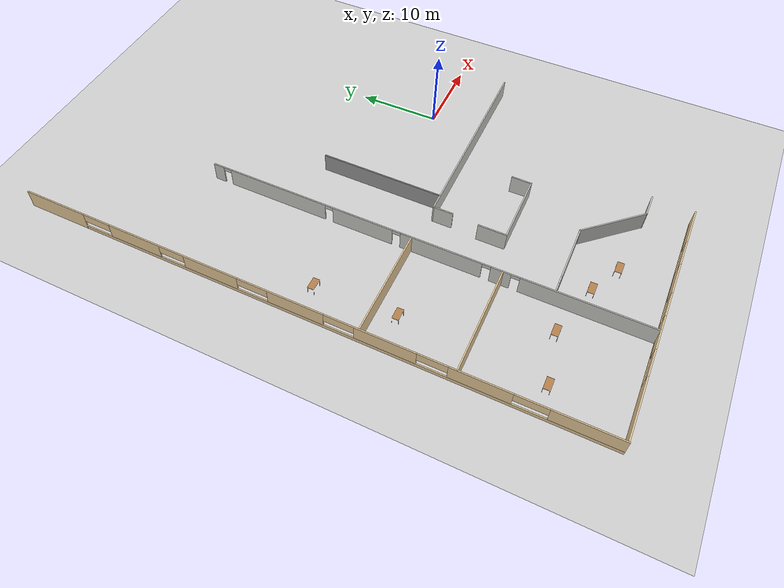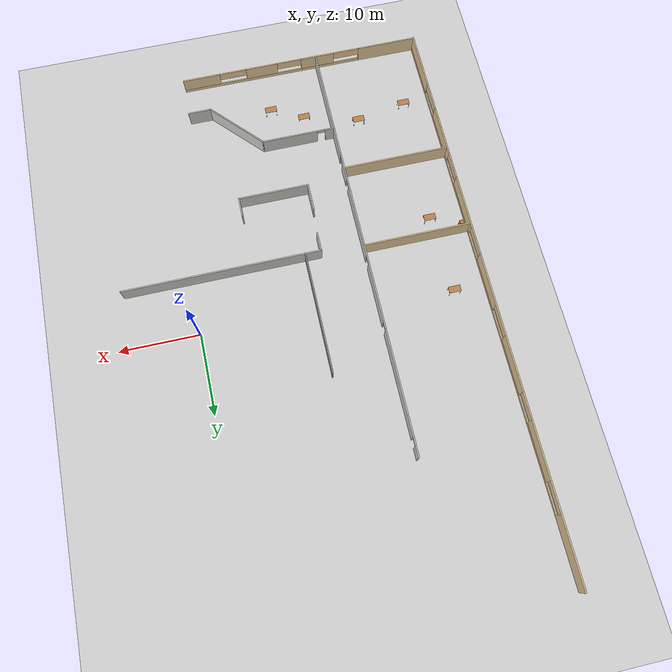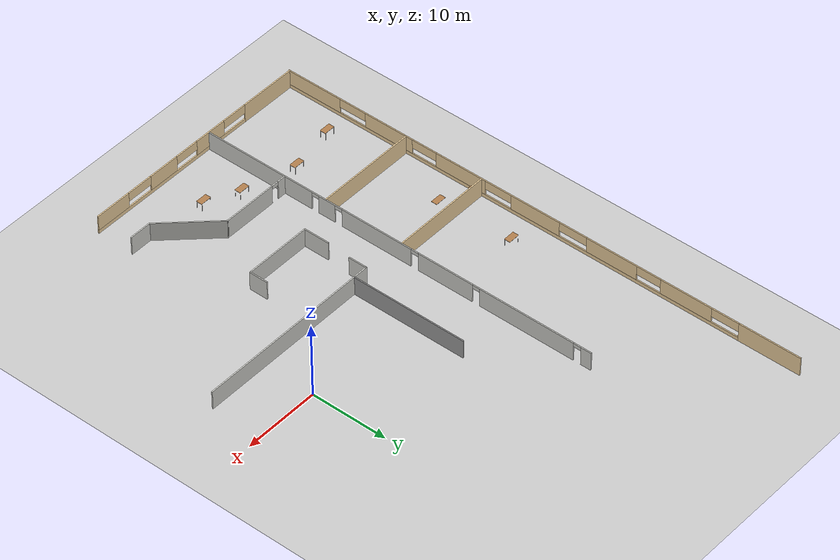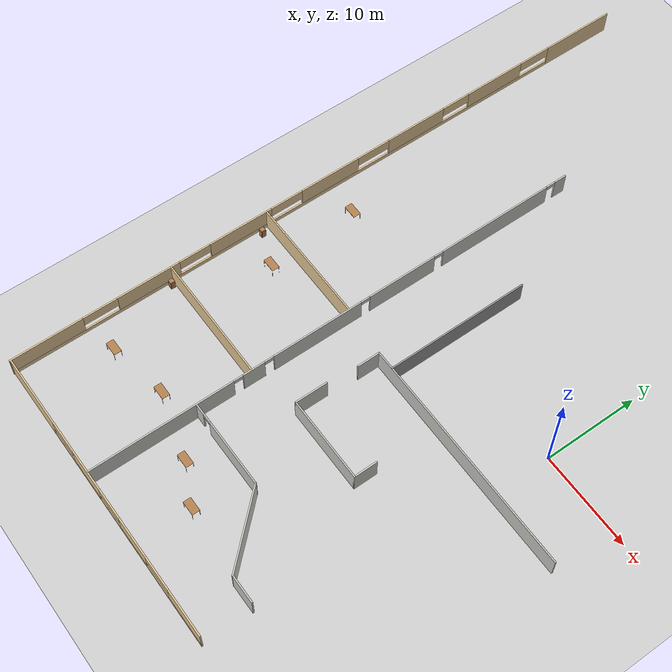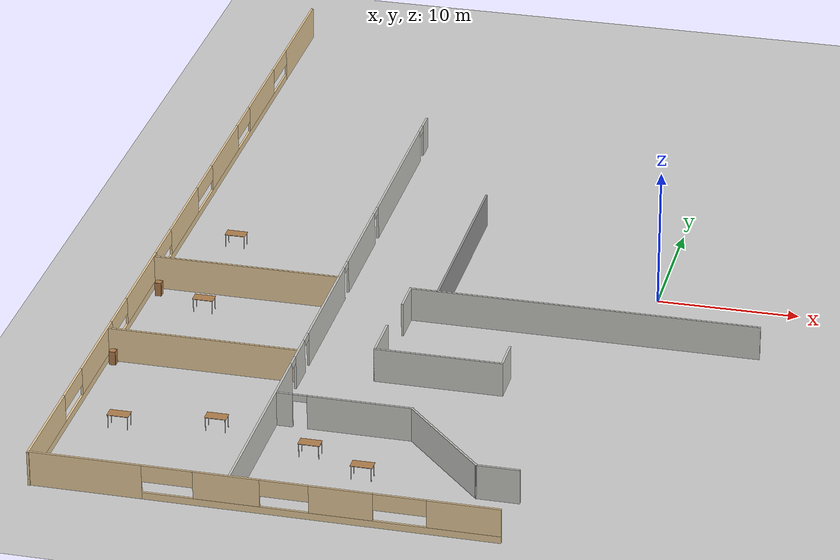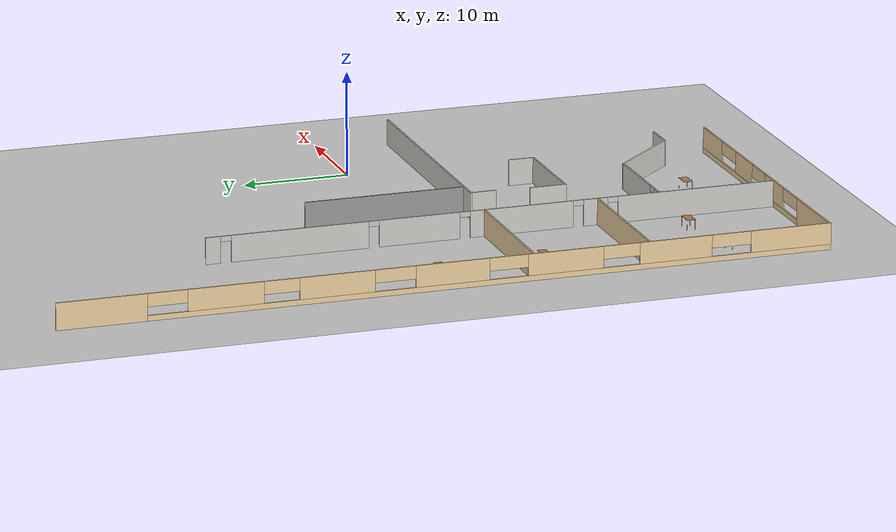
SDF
<sdf version="1.6">
 <world name="default">
  <model name="ground_plane">
   <static>1</static>
   <link name="link">
    <collision name="collision">
     <geometry><plane><normal>0 0 1</normal><size>100 100</size></plane></geometry>
     <surface><friction><ode><mu>100</mu><mu2>50</mu2></ode></friction></surface>
    </collision>
    <visual name="visual">
     <cast_shadows>0</cast_shadows>
     <geometry><plane><normal>0 0 1</normal><size>100 100</size></plane></geometry>
     <material>
      <script><uri>file://media/materials/scripts/gazebo.material</uri><name>Gazebo/Grey</name></script>
     </material>
    </visual>
   </link>
  </model>
  <model name="Building">
   <pose>0.1606 -0.442 0 0 -0 0</pose>
   <link name="Wall_10">
    <pose>-19.5795 -33.75 0 0 -0 0</pose>
    <visual name="Wall_10_Visual_0">
     <pose>-11.9192 0 1.25 0 -0 0</pose>
     <geometry><box><size>7.66158 0.15 2.5</size></box></geometry>
     <material>
      <script><uri>file://media/materials/scripts/gazebo.material</uri><name>Gazebo/Grey</name></script>
      <ambient>0.921569 0.807843 0.615686 1</ambient>
     </material>
     <meta><layer>0</layer></meta>
    </visual>
    <collision name="Wall_10_Collision_0">
     <geometry><box><size>7.66158 0.15 2.5</size></box></geometry>
     <pose>-11.9192 0 1.25 0 -0 0</pose>
    </collision>
    <visual name="Wall_10_Visual_1">
     <pose>3.83079 0 0.25 0 -0 0</pose>
     <geometry><box><size>23.8384 0.15 0.5</size></box></geometry>
     <material>
      <script><uri>file://media/materials/scripts/gazebo.material</uri><name>Gazebo/Grey</name></script>
      <ambient>0.921569 0.807843 0.615686 1</ambient>
     </material>
     <meta><layer>0</layer></meta>
    </visual>
    <collision name="Wall_10_Collision_1">
     <geometry><box><size>23.8384 0.15 0.5</size></box></geometry>
     <pose>3.83079 0 0.25 0 -0 0</pose>
    </collision>
    <visual name="Wall_10_Visual_2">
     <pose>-2.41376 0 1.5 0 -0 0</pose>
     <geometry><box><size>4.46303 0.15 2</size></box></geometry>
     <material>
      <script><uri>file://media/materials/scripts/gazebo.material</uri><name>Gazebo/Grey</name></script>
      <ambient>0.921569 0.807843 0.615686 1</ambient>
     </material>
     <meta><layer>0</layer></meta>
    </visual>
    <collision name="Wall_10_Collision_2">
     <geometry><box><size>4.46303 0.15 2</size></box></geometry>
     <pose>-2.41376 0 1.5 0 -0 0</pose>
    </collision>
    <visual name="Wall_10_Visual_3">
     <pose>5.19728 0 1.5 0 -0 0</pose>
     <geometry><box><size>4.24144 0.15 2</size></box></geometry>
     <material>
      <script><uri>file://media/materials/scripts/gazebo.material</uri><name>Gazebo/Grey</name></script>
      <ambient>0.921569 0.807843 0.615686 1</ambient>
     </material>
     <meta><layer>0</layer></meta>
    </visual>
    <collision name="Wall_10_Collision_3">
     <geometry><box><size>4.24144 0.15 2</size></box></geometry>
     <pose>5.19728 0 1.5 0 -0 0</pose>
    </collision>
    <visual name="Wall_10_Visual_4">
     <pose>13.3049 0 1.5 0 -0 0</pose>
     <geometry><box><size>4.89016 0.15 2</size></box></geometry>
     <material>
      <script><uri>file://media/materials/scripts/gazebo.material</uri><name>Gazebo/Grey</name></script>
      <ambient>0.921569 0.807843 0.615686 1</ambient>
     </material>
     <meta><layer>0</layer></meta>
    </visual>
    <collision name="Wall_10_Collision_4">
     <geometry><box><size>4.89016 0.15 2</size></box></geometry>
     <pose>13.3049 0 1.5 0 -0 0</pose>
    </collision>
    <visual name="Wall_10_Visual_5">
     <pose>-6.36685 0 1.9 0 -0 0</pose>
     <geometry><box><size>3.44314 0.15 1.2</size></box></geometry>
     <material>
      <script><uri>file://media/materials/scripts/gazebo.material</uri><name>Gazebo/Grey</name></script>
      <ambient>0.921569 0.807843 0.615686 1</ambient>
     </material>
     <meta><layer>0</layer></meta>
    </visual>
    <collision name="Wall_10_Collision_5">
     <geometry><box><size>3.44314 0.15 1.2</size></box></geometry>
     <pose>-6.36685 0 1.9 0 -0 0</pose>
    </collision>
    <visual name="Wall_10_Visual_6">
     <pose>1.44716 0 1.9 0 -0 0</pose>
     <geometry><box><size>3.25881 0.15 1.2</size></box></geometry>
     <material>
      <script><uri>file://media/materials/scripts/gazebo.material</uri><name>Gazebo/Grey</name></script>
      <ambient>0.921569 0.807843 0.615686 1</ambient>
     </material>
     <meta><layer>0</layer></meta>
    </visual>
    <collision name="Wall_10_Collision_6">
     <geometry><box><size>3.25881 0.15 1.2</size></box></geometry>
     <pose>1.44716 0 1.9 0 -0 0</pose>
    </collision>
    <visual name="Wall_10_Visual_7">
     <pose>9.08892 0 1.9 0 -0 0</pose>
     <geometry><box><size>3.54184 0.15 1.2</size></box></geometry>
     <material>
      <script><uri>file://media/materials/scripts/gazebo.material</uri><name>Gazebo/Grey</name></script>
      <ambient>0.921569 0.807843 0.615686 1</ambient>
     </material>
     <meta><layer>0</layer></meta>
    </visual>
    <collision name="Wall_10_Collision_7">
     <geometry><box><size>3.54184 0.15 1.2</size></box></geometry>
     <pose>9.08892 0 1.9 0 -0 0</pose>
    </collision>
   </link>
   <link name="Wall_2">
    <pose>-35.329 1.98049 0 0 0 -1.5708</pose>
    <visual name="Wall_2_Visual_0">
     <pose>-31.7867 0 1.25 0 -0 0</pose>
     <geometry><box><size>8.1767 0.15 2.5</size></box></geometry>
     <material>
      <script><uri>file://media/materials/scripts/gazebo.material</uri><name>Gazebo/Grey</name></script>
      <ambient>0.921569 0.807843 0.615686 1</ambient>
     </material>
     <meta><layer>0</layer></meta>
    </visual>
    <collision name="Wall_2_Collision_0">
     <geometry><box><size>8.1767 0.15 2.5</size></box></geometry>
     <pose>-31.7867 0 1.25 0 -0 0</pose>
    </collision>
    <visual name="Wall_2_Visual_1">
     <pose>4.08835 0 0.25 0 -0 0</pose>
     <geometry><box><size>63.5733 0.15 0.5</size></box></geometry>
     <material>
      <script><uri>file://media/materials/scripts/gazebo.material</uri><name>Gazebo/Grey</name></script>
      <ambient>0.921569 0.807843 0.615686 1</ambient>
     </material>
     <meta><layer>0</layer></meta>
    </visual>
    <collision name="Wall_2_Collision_1">
     <geometry><box><size>63.5733 0.15 0.5</size></box></geometry>
     <pose>4.08835 0 0.25 0 -0 0</pose>
    </collision>
    <visual name="Wall_2_Visual_2">
     <pose>-20.6272 0 1.5 0 -0 0</pose>
     <geometry><box><size>6.88516 0.15 2</size></box></geometry>
     <material>
      <script><uri>file://media/materials/scripts/gazebo.material</uri><name>Gazebo/Grey</name></script>
      <ambient>0.921569 0.807843 0.615686 1</ambient>
     </material>
     <meta><layer>0</layer></meta>
    </visual>
    <collision name="Wall_2_Collision_2">
     <geometry><box><size>6.88516 0.15 2</size></box></geometry>
     <pose>-20.6272 0 1.5 0 -0 0</pose>
    </collision>
    <visual name="Wall_2_Visual_3">
     <pose>-10.487 0 1.5 0 -0 0</pose>
     <geometry><box><size>6.88516 0.15 2</size></box></geometry>
     <material>
      <script><uri>file://media/materials/scripts/gazebo.material</uri><name>Gazebo/Grey</name></script>
      <ambient>0.921569 0.807843 0.615686 1</ambient>
     </material>
     <meta><layer>0</layer></meta>
    </visual>
    <collision name="Wall_2_Collision_3">
     <geometry><box><size>6.88516 0.15 2</size></box></geometry>
     <pose>-10.487 0 1.5 0 -0 0</pose>
    </collision>
    <visual name="Wall_2_Visual_4">
     <pose>0.140779 0 1.5 0 -0 0</pose>
     <geometry><box><size>6.7931 0.15 2</size></box></geometry>
     <material>
      <script><uri>file://media/materials/scripts/gazebo.material</uri><name>Gazebo/Grey</name></script>
      <ambient>0.921569 0.807843 0.615686 1</ambient>
     </material>
     <meta><layer>0</layer></meta>
    </visual>
    <collision name="Wall_2_Collision_4">
     <geometry><box><size>6.7931 0.15 2</size></box></geometry>
     <pose>0.140779 0 1.5 0 -0 0</pose>
    </collision>
    <visual name="Wall_2_Visual_5">
     <pose>10.6748 0 1.5 0 -0 0</pose>
     <geometry><box><size>7.0604 0.15 2</size></box></geometry>
     <material>
      <script><uri>file://media/materials/scripts/gazebo.material</uri><name>Gazebo/Grey</name></script>
      <ambient>0.921569 0.807843 0.615686 1</ambient>
     </material>
     <meta><layer>0</layer></meta>
    </visual>
    <collision name="Wall_2_Collision_5">
     <geometry><box><size>7.0604 0.15 2</size></box></geometry>
     <pose>10.6748 0 1.5 0 -0 0</pose>
    </collision>
    <visual name="Wall_2_Visual_6">
     <pose>21.0585 0 1.5 0 -0 0</pose>
     <geometry><box><size>6.84339 0.15 2</size></box></geometry>
     <material>
      <script><uri>file://media/materials/scripts/gazebo.material</uri><name>Gazebo/Grey</name></script>
      <ambient>0.921569 0.807843 0.615686 1</ambient>
     </material>
     <meta><layer>0</layer></meta>
    </visual>
    <collision name="Wall_2_Collision_6">
     <geometry><box><size>6.84339 0.15 2</size></box></geometry>
     <pose>21.0585 0 1.5 0 -0 0</pose>
    </collision>
    <visual name="Wall_2_Visual_7">
     <pose>32.0339 0 1.5 0 -0 0</pose>
     <geometry><box><size>7.68221 0.15 2</size></box></geometry>
     <material>
      <script><uri>file://media/materials/scripts/gazebo.material</uri><name>Gazebo/Grey</name></script>
      <ambient>0.921569 0.807843 0.615686 1</ambient>
     </material>
     <meta><layer>0</layer></meta>
    </visual>
    <collision name="Wall_2_Collision_7">
     <geometry><box><size>7.68221 0.15 2</size></box></geometry>
     <pose>32.0339 0 1.5 0 -0 0</pose>
    </collision>
    <visual name="Wall_2_Visual_8">
     <pose>-25.884 0 1.9 0 -0 0</pose>
     <geometry><box><size>3.62857 0.15 1.2</size></box></geometry>
     <material>
      <script><uri>file://media/materials/scripts/gazebo.material</uri><name>Gazebo/Grey</name></script>
      <ambient>0.921569 0.807843 0.615686 1</ambient>
     </material>
     <meta><layer>0</layer></meta>
    </visual>
    <collision name="Wall_2_Collision_8">
     <geometry><box><size>3.62857 0.15 1.2</size></box></geometry>
     <pose>-25.884 0 1.9 0 -0 0</pose>
    </collision>
    <visual name="Wall_2_Visual_9">
     <pose>-15.5571 0 1.9 0 -0 0</pose>
     <geometry><box><size>3.25498 0.15 1.2</size></box></geometry>
     <material>
      <script><uri>file://media/materials/scripts/gazebo.material</uri><name>Gazebo/Grey</name></script>
      <ambient>0.921569 0.807843 0.615686 1</ambient>
     </material>
     <meta><layer>0</layer></meta>
    </visual>
    <collision name="Wall_2_Collision_9">
     <geometry><box><size>3.25498 0.15 1.2</size></box></geometry>
     <pose>-15.5571 0 1.9 0 -0 0</pose>
    </collision>
    <visual name="Wall_2_Visual_10">
     <pose>-5.15011 0 1.9 0 -0 0</pose>
     <geometry><box><size>3.78867 0.15 1.2</size></box></geometry>
     <material>
      <script><uri>file://media/materials/scripts/gazebo.material</uri><name>Gazebo/Grey</name></script>
      <ambient>0.921569 0.807843 0.615686 1</ambient>
     </material>
     <meta><layer>0</layer></meta>
    </visual>
    <collision name="Wall_2_Collision_10">
     <geometry><box><size>3.78867 0.15 1.2</size></box></geometry>
     <pose>-5.15011 0 1.9 0 -0 0</pose>
    </collision>
    <visual name="Wall_2_Visual_11">
     <pose>5.34097 0 1.9 0 -0 0</pose>
     <geometry><box><size>3.60729 0.15 1.2</size></box></geometry>
     <material>
      <script><uri>file://media/materials/scripts/gazebo.material</uri><name>Gazebo/Grey</name></script>
      <ambient>0.921569 0.807843 0.615686 1</ambient>
     </material>
     <meta><layer>0</layer></meta>
    </visual>
    <collision name="Wall_2_Collision_11">
     <geometry><box><size>3.60729 0.15 1.2</size></box></geometry>
     <pose>5.34097 0 1.9 0 -0 0</pose>
    </collision>
    <visual name="Wall_2_Visual_12">
     <pose>15.9209 0 1.9 0 -0 0</pose>
     <geometry><box><size>3.43183 0.15 1.2</size></box></geometry>
     <material>
      <script><uri>file://media/materials/scripts/gazebo.material</uri><name>Gazebo/Grey</name></script>
      <ambient>0.921569 0.807843 0.615686 1</ambient>
     </material>
     <meta><layer>0</layer></meta>
    </visual>
    <collision name="Wall_2_Collision_12">
     <geometry><box><size>3.43183 0.15 1.2</size></box></geometry>
     <pose>15.9209 0 1.9 0 -0 0</pose>
    </collision>
    <visual name="Wall_2_Visual_13">
     <pose>26.3365 0 1.9 0 -0 0</pose>
     <geometry><box><size>3.71256 0.15 1.2</size></box></geometry>
     <material>
      <script><uri>file://media/materials/scripts/gazebo.material</uri><name>Gazebo/Grey</name></script>
      <ambient>0.921569 0.807843 0.615686 1</ambient>
     </material>
     <meta><layer>0</layer></meta>
    </visual>
    <collision name="Wall_2_Collision_13">
     <geometry><box><size>3.71256 0.15 1.2</size></box></geometry>
     <pose>26.3365 0 1.9 0 -0 0</pose>
    </collision>
   </link>
   <link name="Wall_48">
    <pose>-21.778 -6.62477 0 0 -0 1.5708</pose>
    <visual name="Wall_48_Visual_0">
     <pose>-19.5242 0 1.25 0 -0 0</pose>
     <geometry><box><size>15.2016 0.15 2.5</size></box></geometry>
     <material>
      <script><uri>file://media/materials/scripts/gazebo.material</uri><name>Gazebo/CeilingTiled</name></script>
      <ambient>1 1 1 1</ambient>
     </material>
     <meta><layer>0</layer></meta>
    </visual>
    <collision name="Wall_48_Collision_0">
     <geometry><box><size>15.2016 0.15 2.5</size></box></geometry>
     <pose>-19.5242 0 1.25 0 -0 0</pose>
    </collision>
    <visual name="Wall_48_Visual_1">
     <pose>-9.74757 0 1.25 0 -0 0</pose>
     <geometry><box><size>2.35165 0.15 2.5</size></box></geometry>
     <material>
      <script><uri>file://media/materials/scripts/gazebo.material</uri><name>Gazebo/CeilingTiled</name></script>
      <ambient>1 1 1 1</ambient>
     </material>
     <meta><layer>0</layer></meta>
    </visual>
    <collision name="Wall_48_Collision_1">
     <geometry><box><size>2.35165 0.15 2.5</size></box></geometry>
     <pose>-9.74757 0 1.25 0 -0 0</pose>
    </collision>
    <visual name="Wall_48_Visual_2">
     <pose>-2.65076 0 1.25 0 -0 0</pose>
     <geometry><box><size>9.84197 0.15 2.5</size></box></geometry>
     <material>
      <script><uri>file://media/materials/scripts/gazebo.material</uri><name>Gazebo/CeilingTiled</name></script>
      <ambient>1 1 1 1</ambient>
     </material>
     <meta><layer>0</layer></meta>
    </visual>
    <collision name="Wall_48_Collision_2">
     <geometry><box><size>9.84197 0.15 2.5</size></box></geometry>
     <pose>-2.65076 0 1.25 0 -0 0</pose>
    </collision>
    <visual name="Wall_48_Visual_3">
     <pose>7.07473 0 1.25 0 -0 0</pose>
     <geometry><box><size>7.60901 0.15 2.5</size></box></geometry>
     <material>
      <script><uri>file://media/materials/scripts/gazebo.material</uri><name>Gazebo/CeilingTiled</name></script>
      <ambient>1 1 1 1</ambient>
     </material>
     <meta><layer>0</layer></meta>
    </visual>
    <collision name="Wall_48_Collision_3">
     <geometry><box><size>7.60901 0.15 2.5</size></box></geometry>
     <pose>7.07473 0 1.25 0 -0 0</pose>
    </collision>
    <visual name="Wall_48_Visual_4">
     <pose>18.3068 0 1.25 0 -0 0</pose>
     <geometry><box><size>12.8551 0.15 2.5</size></box></geometry>
     <material>
      <script><uri>file://media/materials/scripts/gazebo.material</uri><name>Gazebo/CeilingTiled</name></script>
      <ambient>1 1 1 1</ambient>
     </material>
     <meta><layer>0</layer></meta>
    </visual>
    <collision name="Wall_48_Collision_4">
     <geometry><box><size>12.8551 0.15 2.5</size></box></geometry>
     <pose>18.3068 0 1.25 0 -0 0</pose>
    </collision>
    <visual name="Wall_48_Visual_5">
     <pose>26.4297 0 1.25 0 -0 0</pose>
     <geometry><box><size>1.39064 0.15 2.5</size></box></geometry>
     <material>
      <script><uri>file://media/materials/scripts/gazebo.material</uri><name>Gazebo/CeilingTiled</name></script>
      <ambient>1 1 1 1</ambient>
     </material>
     <meta><layer>0</layer></meta>
    </visual>
    <collision name="Wall_48_Collision_5">
     <geometry><box><size>1.39064 0.15 2.5</size></box></geometry>
     <pose>26.4297 0 1.25 0 -0 0</pose>
    </collision>
    <visual name="Wall_48_Visual_6">
     <pose>-11.4234 0 2.25 0 -0 0</pose>
     <geometry><box><size>1 0.15 0.5</size></box></geometry>
     <material>
      <script><uri>file://media/materials/scripts/gazebo.material</uri><name>Gazebo/CeilingTiled</name></script>
      <ambient>1 1 1 1</ambient>
     </material>
     <meta><layer>0</layer></meta>
    </visual>
    <collision name="Wall_48_Collision_6">
     <geometry><box><size>1 0.15 0.5</size></box></geometry>
     <pose>-11.4234 0 2.25 0 -0 0</pose>
    </collision>
    <visual name="Wall_48_Visual_7">
     <pose>-8.07175 0 2.25 0 -0 0</pose>
     <geometry><box><size>1 0.15 0.5</size></box></geometry>
     <material>
      <script><uri>file://media/materials/scripts/gazebo.material</uri><name>Gazebo/CeilingTiled</name></script>
      <ambient>1 1 1 1</ambient>
     </material>
     <meta><layer>0</layer></meta>
    </visual>
    <collision name="Wall_48_Collision_7">
     <geometry><box><size>1 0.15 0.5</size></box></geometry>
     <pose>-8.07175 0 2.25 0 -0 0</pose>
    </collision>
    <visual name="Wall_48_Visual_8">
     <pose>2.77022 0 2.25 0 -0 0</pose>
     <geometry><box><size>1 0.15 0.5</size></box></geometry>
     <material>
      <script><uri>file://media/materials/scripts/gazebo.material</uri><name>Gazebo/CeilingTiled</name></script>
      <ambient>1 1 1 1</ambient>
     </material>
     <meta><layer>0</layer></meta>
    </visual>
    <collision name="Wall_48_Collision_8">
     <geometry><box><size>1 0.15 0.5</size></box></geometry>
     <pose>2.77022 0 2.25 0 -0 0</pose>
    </collision>
    <visual name="Wall_48_Visual_9">
     <pose>11.3792 0 2.25 0 -0 0</pose>
     <geometry><box><size>1 0.15 0.5</size></box></geometry>
     <material>
      <script><uri>file://media/materials/scripts/gazebo.material</uri><name>Gazebo/CeilingTiled</name></script>
      <ambient>1 1 1 1</ambient>
     </material>
     <meta><layer>0</layer></meta>
    </visual>
    <collision name="Wall_48_Collision_9">
     <geometry><box><size>1 0.15 0.5</size></box></geometry>
     <pose>11.3792 0 2.25 0 -0 0</pose>
    </collision>
    <visual name="Wall_48_Visual_10">
     <pose>25.2344 0 2.25 0 -0 0</pose>
     <geometry><box><size>1 0.15 0.5</size></box></geometry>
     <material>
      <script><uri>file://media/materials/scripts/gazebo.material</uri><name>Gazebo/CeilingTiled</name></script>
      <ambient>1 1 1 1</ambient>
     </material>
     <meta><layer>0</layer></meta>
    </visual>
    <collision name="Wall_48_Collision_10">
     <geometry><box><size>1 0.15 0.5</size></box></geometry>
     <pose>25.2344 0 2.25 0 -0 0</pose>
    </collision>
   </link>
   <link name="Wall_56">
    <collision name="Wall_56_Collision">
     <geometry><box><size>13.5 0.15 2.5</size></box></geometry>
     <pose>0 0 1.25 0 -0 0</pose>
    </collision>
    <visual name="Wall_56_Visual">
     <pose>0 0 1.25 0 -0 0</pose>
     <geometry><box><size>13.5 0.15 2.5</size></box></geometry>
     <material>
      <script><uri>file://media/materials/scripts/gazebo.material</uri><name>Gazebo/Grey</name></script>
      <ambient>0.921569 0.807843 0.615686 1</ambient>
     </material>
     <meta><layer>0</layer></meta>
    </visual>
    <pose>-28.5496 -5.72467 0 0 -0 0</pose>
   </link>
   <link name="Wall_58">
    <collision name="Wall_58_Collision">
     <geometry><box><size>13.5 0.15 2.5</size></box></geometry>
     <pose>0 0 1.25 0 -0 0</pose>
    </collision>
    <visual name="Wall_58_Visual">
     <pose>0 0 1.25 0 -0 0</pose>
     <geometry><box><size>13.5 0.15 2.5</size></box></geometry>
     <material>
      <script><uri>file://media/materials/scripts/gazebo.material</uri><name>Gazebo/Grey</name></script>
      <ambient>0.921569 0.807843 0.615686 1</ambient>
     </material>
     <meta><layer>0</layer></meta>
    </visual>
    <pose>-28.5707 -16.5913 0 0 -0 0</pose>
   </link>
   <link name="Wall_60">
    <pose>-17.0925 -22.5155 0 0 -0 0</pose>
    <visual name="Wall_60_Visual_0">
     <pose>-4.12823 0 1.25 0 -0 0</pose>
     <geometry><box><size>1.24353 0.15 2.5</size></box></geometry>
     <material>
      <script><uri>file://media/materials/scripts/gazebo.material</uri><name>Gazebo/CeilingTiled</name></script>
      <ambient>1 1 1 1</ambient>
     </material>
     <meta><layer>0</layer></meta>
    </visual>
    <collision name="Wall_60_Collision_0">
     <geometry><box><size>1.24353 0.15 2.5</size></box></geometry>
     <pose>-4.12823 0 1.25 0 -0 0</pose>
    </collision>
    <visual name="Wall_60_Visual_1">
     <pose>1.12177 0 1.25 0 -0 0</pose>
     <geometry><box><size>7.25647 0.15 2.5</size></box></geometry>
     <material>
      <script><uri>file://media/materials/scripts/gazebo.material</uri><name>Gazebo/CeilingTiled</name></script>
      <ambient>1 1 1 1</ambient>
     </material>
     <meta><layer>0</layer></meta>
    </visual>
    <collision name="Wall_60_Collision_1">
     <geometry><box><size>7.25647 0.15 2.5</size></box></geometry>
     <pose>1.12177 0 1.25 0 -0 0</pose>
    </collision>
    <visual name="Wall_60_Visual_2">
     <pose>-3.00647 0 2.25 0 -0 0</pose>
     <geometry><box><size>1 0.15 0.5</size></box></geometry>
     <material>
      <script><uri>file://media/materials/scripts/gazebo.material</uri><name>Gazebo/CeilingTiled</name></script>
      <ambient>1 1 1 1</ambient>
     </material>
     <meta><layer>0</layer></meta>
    </visual>
    <collision name="Wall_60_Collision_2">
     <geometry><box><size>1 0.15 0.5</size></box></geometry>
     <pose>-3.00647 0 2.25 0 -0 0</pose>
    </collision>
   </link>
   <link name="Wall_61">
    <collision name="Wall_61_Collision">
     <geometry><box><size>8.62706 0.15 2.5</size></box></geometry>
     <pose>0 0 1.25 0 -0 0</pose>
    </collision>
    <visual name="Wall_61_Visual">
     <pose>0 0 1.25 0 -0 0</pose>
     <geometry><box><size>8.62706 0.15 2.5</size></box></geometry>
     <material>
      <script><uri>file://media/materials/scripts/gazebo.material</uri><name>Gazebo/CeilingTiled</name></script>
      <ambient>1 1 1 1</ambient>
     </material>
     <meta><layer>0</layer></meta>
    </visual>
    <pose>-9.5277 -25.6162 0 0 0 -0.820597</pose>
   </link>
   <link name="Wall_62">
    <collision name="Wall_62_Collision">
     <geometry><box><size>3 0.15 2.5</size></box></geometry>
     <pose>0 0 1.25 0 -0 0</pose>
    </collision>
    <visual name="Wall_62_Visual">
     <pose>0 0 1.25 0 -0 0</pose>
     <geometry><box><size>3 0.15 2.5</size></box></geometry>
     <material>
      <script><uri>file://media/materials/scripts/gazebo.material</uri><name>Gazebo/CeilingTiled</name></script>
      <ambient>1 1 1 1</ambient>
     </material>
     <meta><layer>0</layer></meta>
    </visual>
    <pose>-5.21294 -28.7169 0 0 -0 0</pose>
   </link>
   <link name="Wall_85">
    <collision name="Wall_85_Collision">
     <geometry><box><size>15.25 0.15 2.5</size></box></geometry>
     <pose>0 0 1.25 0 -0 0</pose>
    </collision>
    <visual name="Wall_85_Visual">
     <pose>0 0 1.25 0 -0 0</pose>
     <geometry><box><size>15.25 0.15 2.5</size></box></geometry>
     <material>
      <script><uri>file://media/materials/scripts/gazebo.material</uri><name>Gazebo/Grey</name></script>
      <ambient>1 1 1 1</ambient>
     </material>
     <meta><layer>0</layer></meta>
    </visual>
    <pose>-14.5335 1.39994 0 0 0 -1.5708</pose>
   </link>
   <link name="Wall_90">
    <collision name="Wall_90_Collision">
     <geometry><box><size>24.75 0.15 2.5</size></box></geometry>
     <pose>0 0 1.25 0 -0 0</pose>
    </collision>
    <visual name="Wall_90_Visual">
     <pose>0 0 1.25 0 -0 0</pose>
     <geometry><box><size>24.75 0.15 2.5</size></box></geometry>
     <material>
      <script><uri>file://media/materials/scripts/gazebo.material</uri><name>Gazebo/CeilingTiled</name></script>
      <ambient>1 1 1 1</ambient>
     </material>
     <meta><layer>0</layer></meta>
    </visual>
    <pose>-4.19704 -6.2126 0 0 -0 3.14159</pose>
   </link>
   <link name="Wall_91">
    <collision name="Wall_91_Collision">
     <geometry><box><size>2.5 0.15 2.5</size></box></geometry>
     <pose>0 0 1.25 0 -0 0</pose>
    </collision>
    <visual name="Wall_91_Visual">
     <pose>0 0 1.25 0 -0 0</pose>
     <geometry><box><size>2.5 0.15 2.5</size></box></geometry>
     <material>
      <script><uri>file://media/materials/scripts/gazebo.material</uri><name>Gazebo/CeilingTiled</name></script>
      <ambient>1 1 1 1</ambient>
     </material>
     <meta><layer>0</layer></meta>
    </visual>
    <pose>-16.497 -7.3876 0 0 0 -1.5708</pose>
   </link>
   <link name="Wall_93">
    <collision name="Wall_93_Collision">
     <geometry><box><size>3.5 0.15 2.5</size></box></geometry>
     <pose>0 0 1.25 0 -0 0</pose>
    </collision>
    <visual name="Wall_93_Visual">
     <pose>0 0 1.25 0 -0 0</pose>
     <geometry><box><size>3.5 0.15 2.5</size></box></geometry>
     <material>
      <script><uri>file://media/materials/scripts/gazebo.material</uri><name>Gazebo/CeilingTiled</name></script>
      <ambient>1 1 1 1</ambient>
     </material>
     <meta><layer>0</layer></meta>
    </visual>
    <pose>-16.7851 -13.5579 0 0 0 -1.5708</pose>
   </link>
   <link name="Wall_94">
    <collision name="Wall_94_Collision">
     <geometry><box><size>9 0.15 2.5</size></box></geometry>
     <pose>0 0 1.25 0 -0 0</pose>
    </collision>
    <visual name="Wall_94_Visual">
     <pose>0 0 1.25 0 -0 0</pose>
     <geometry><box><size>9 0.15 2.5</size></box></geometry>
     <material>
      <script><uri>file://media/materials/scripts/gazebo.material</uri><name>Gazebo/CeilingTiled</name></script>
      <ambient>1 1 1 1</ambient>
     </material>
     <meta><layer>0</layer></meta>
    </visual>
    <pose>-12.3601 -15.2329 0 0 -0 0</pose>
   </link>
   <link name="Wall_95">
    <collision name="Wall_95_Collision">
     <geometry><box><size>2.5 0.15 2.5</size></box></geometry>
     <pose>0 0 1.25 0 -0 0</pose>
    </collision>
    <visual name="Wall_95_Visual">
     <pose>0 0 1.25 0 -0 0</pose>
     <geometry><box><size>2.5 0.15 2.5</size></box></geometry>
     <material>
      <script><uri>file://media/materials/scripts/gazebo.material</uri><name>Gazebo/CeilingTiled</name></script>
      <ambient>1 1 1 1</ambient>
     </material>
     <meta><layer>0</layer></meta>
    </visual>
    <pose>-7.93507 -14.0579 0 0 -0 1.5708</pose>
   </link>
   <static>1</static>
  </model>
  <model name="table_clone_4">
   <static>1</static>
   <link name="link">
    <collision name="surface">
     <pose>0 0 1 0 -0 0</pose>
     <geometry><box><size>1.5 0.8 0.03</size></box></geometry>
     <surface><friction><ode><mu>0.6</mu><mu2>0.6</mu2></ode></friction></surface>
    </collision>
    <visual name="visual1">
     <pose>0 0 1 0 -0 0</pose>
     <geometry><box><size>1.5 0.8 0.03</size></box></geometry>
     <material>
      <script><uri>file://media/materials/scripts/gazebo.material</uri><name>Gazebo/Wood</name></script>
     </material>
    </visual>
    <collision name="front_left_leg">
     <pose>0.68 0.38 0.5 0 -0 0</pose>
     <geometry><cylinder><radius>0.02</radius><length>1</length></cylinder></geometry>
    </collision>
    <visual name="front_left_leg">
     <pose>0.68 0.38 0.5 0 -0 0</pose>
     <geometry><cylinder><radius>0.02</radius><length>1</length></cylinder></geometry>
     <material>
      <script><uri>file://media/materials/scripts/gazebo.material</uri><name>Gazebo/Grey</name></script>
     </material>
    </visual>
    <collision name="front_right_leg">
     <pose>0.68 -0.38 0.5 0 -0 0</pose>
     <geometry><cylinder><radius>0.02</radius><length>1</length></cylinder></geometry>
    </collision>
    <visual name="front_right_leg">
     <pose>0.68 -0.38 0.5 0 -0 0</pose>
     <geometry><cylinder><radius>0.02</radius><length>1</length></cylinder></geometry>
     <material>
      <script><uri>file://media/materials/scripts/gazebo.material</uri><name>Gazebo/Grey</name></script>
     </material>
    </visual>
    <collision name="back_right_leg">
     <pose>-0.68 -0.38 0.5 0 -0 0</pose>
     <geometry><cylinder><radius>0.02</radius><length>1</length></cylinder></geometry>
    </collision>
    <visual name="back_right_leg">
     <pose>-0.68 -0.38 0.5 0 -0 0</pose>
     <geometry><cylinder><radius>0.02</radius><length>1</length></cylinder></geometry>
     <material>
      <script><uri>file://media/materials/scripts/gazebo.material</uri><name>Gazebo/Grey</name></script>
     </material>
    </visual>
    <collision name="back_left_leg">
     <pose>-0.68 0.38 0.5 0 -0 0</pose>
     <geometry><cylinder><radius>0.02</radius><length>1</length></cylinder></geometry>
    </collision>
    <visual name="back_left_leg">
     <pose>-0.68 0.38 0.5 0 -0 0</pose>
     <geometry><cylinder><radius>0.02</radius><length>1</length></cylinder></geometry>
     <material>
      <script><uri>file://media/materials/scripts/gazebo.material</uri><name>Gazebo/Grey</name></script>
     </material>
    </visual>
   </link>
   <pose>-18.335 -26.384 0 0 -0 0</pose>
  </model>
  <model name="table_clone_5">
   <static>1</static>
   <link name="link">
    <collision name="surface">
     <pose>0 0 1 0 -0 0</pose>
     <geometry><box><size>1.5 0.8 0.03</size></box></geometry>
     <surface><friction><ode><mu>0.6</mu><mu2>0.6</mu2></ode></friction></surface>
    </collision>
    <visual name="visual1">
     <pose>0 0 1 0 -0 0</pose>
     <geometry><box><size>1.5 0.8 0.03</size></box></geometry>
     <material>
      <script><uri>file://media/materials/scripts/gazebo.material</uri><name>Gazebo/Wood</name></script>
     </material>
    </visual>
    <collision name="front_left_leg">
     <pose>0.68 0.38 0.5 0 -0 0</pose>
     <geometry><cylinder><radius>0.02</radius><length>1</length></cylinder></geometry>
    </collision>
    <visual name="front_left_leg">
     <pose>0.68 0.38 0.5 0 -0 0</pose>
     <geometry><cylinder><radius>0.02</radius><length>1</length></cylinder></geometry>
     <material>
      <script><uri>file://media/materials/scripts/gazebo.material</uri><name>Gazebo/Grey</name></script>
     </material>
    </visual>
    <collision name="front_right_leg">
     <pose>0.68 -0.38 0.5 0 -0 0</pose>
     <geometry><cylinder><radius>0.02</radius><length>1</length></cylinder></geometry>
    </collision>
    <visual name="front_right_leg">
     <pose>0.68 -0.38 0.5 0 -0 0</pose>
     <geometry><cylinder><radius>0.02</radius><length>1</length></cylinder></geometry>
     <material>
      <script><uri>file://media/materials/scripts/gazebo.material</uri><name>Gazebo/Grey</name></script>
     </material>
    </visual>
    <collision name="back_right_leg">
     <pose>-0.68 -0.38 0.5 0 -0 0</pose>
     <geometry><cylinder><radius>0.02</radius><length>1</length></cylinder></geometry>
    </collision>
    <visual name="back_right_leg">
     <pose>-0.68 -0.38 0.5 0 -0 0</pose>
     <geometry><cylinder><radius>0.02</radius><length>1</length></cylinder></geometry>
     <material>
      <script><uri>file://media/materials/scripts/gazebo.material</uri><name>Gazebo/Grey</name></script>
     </material>
    </visual>
    <collision name="back_left_leg">
     <pose>-0.68 0.38 0.5 0 -0 0</pose>
     <geometry><cylinder><radius>0.02</radius><length>1</length></cylinder></geometry>
    </collision>
    <visual name="back_left_leg">
     <pose>-0.68 0.38 0.5 0 -0 0</pose>
     <geometry><cylinder><radius>0.02</radius><length>1</length></cylinder></geometry>
     <material>
      <script><uri>file://media/materials/scripts/gazebo.material</uri><name>Gazebo/Grey</name></script>
     </material>
    </visual>
   </link>
   <pose>-14.2665 -28.3536 0 0 -0 0</pose>
  </model>
  <model name="table_clone_9">
   <static>1</static>
   <link name="link">
    <collision name="surface">
     <pose>0 0 1 0 -0 0</pose>
     <geometry><box><size>1.5 0.8 0.03</size></box></geometry>
     <surface><friction><ode><mu>0.6</mu><mu2>0.6</mu2></ode></friction></surface>
    </collision>
    <visual name="visual1">
     <pose>0 0 1 0 -0 0</pose>
     <geometry><box><size>1.5 0.8 0.03</size></box></geometry>
     <material>
      <script><uri>file://media/materials/scripts/gazebo.material</uri><name>Gazebo/Wood</name></script>
     </material>
    </visual>
    <collision name="front_left_leg">
     <pose>0.68 0.38 0.5 0 -0 0</pose>
     <geometry><cylinder><radius>0.02</radius><length>1</length></cylinder></geometry>
    </collision>
    <visual name="front_left_leg">
     <pose>0.68 0.38 0.5 0 -0 0</pose>
     <geometry><cylinder><radius>0.02</radius><length>1</length></cylinder></geometry>
     <material>
      <script><uri>file://media/materials/scripts/gazebo.material</uri><name>Gazebo/Grey</name></script>
     </material>
    </visual>
    <collision name="front_right_leg">
     <pose>0.68 -0.38 0.5 0 -0 0</pose>
     <geometry><cylinder><radius>0.02</radius><length>1</length></cylinder></geometry>
    </collision>
    <visual name="front_right_leg">
     <pose>0.68 -0.38 0.5 0 -0 0</pose>
     <geometry><cylinder><radius>0.02</radius><length>1</length></cylinder></geometry>
     <material>
      <script><uri>file://media/materials/scripts/gazebo.material</uri><name>Gazebo/Grey</name></script>
     </material>
    </visual>
    <collision name="back_right_leg">
     <pose>-0.68 -0.38 0.5 0 -0 0</pose>
     <geometry><cylinder><radius>0.02</radius><length>1</length></cylinder></geometry>
    </collision>
    <visual name="back_right_leg">
     <pose>-0.68 -0.38 0.5 0 -0 0</pose>
     <geometry><cylinder><radius>0.02</radius><length>1</length></cylinder></geometry>
     <material>
      <script><uri>file://media/materials/scripts/gazebo.material</uri><name>Gazebo/Grey</name></script>
     </material>
    </visual>
    <collision name="back_left_leg">
     <pose>-0.68 0.38 0.5 0 -0 0</pose>
     <geometry><cylinder><radius>0.02</radius><length>1</length></cylinder></geometry>
    </collision>
    <visual name="back_left_leg">
     <pose>-0.68 0.38 0.5 0 -0 0</pose>
     <geometry><cylinder><radius>0.02</radius><length>1</length></cylinder></geometry>
     <material>
      <script><uri>file://media/materials/scripts/gazebo.material</uri><name>Gazebo/Grey</name></script>
     </material>
    </visual>
   </link>
   <pose>-31.7058 -25.6344 0 0 -0 0</pose>
  </model>
  <model name="table_clone_10">
   <static>1</static>
   <link name="link">
    <collision name="surface">
     <pose>0 0 1 0 -0 0</pose>
     <geometry><box><size>1.5 0.8 0.03</size></box></geometry>
     <surface><friction><ode><mu>0.6</mu><mu2>0.6</mu2></ode></friction></surface>
    </collision>
    <visual name="visual1">
     <pose>0 0 1 0 -0 0</pose>
     <geometry><box><size>1.5 0.8 0.03</size></box></geometry>
     <material>
      <script><uri>file://media/materials/scripts/gazebo.material</uri><name>Gazebo/Wood</name></script>
     </material>
    </visual>
    <collision name="front_left_leg">
     <pose>0.68 0.38 0.5 0 -0 0</pose>
     <geometry><cylinder><radius>0.02</radius><length>1</length></cylinder></geometry>
    </collision>
    <visual name="front_left_leg">
     <pose>0.68 0.38 0.5 0 -0 0</pose>
     <geometry><cylinder><radius>0.02</radius><length>1</length></cylinder></geometry>
     <material>
      <script><uri>file://media/materials/scripts/gazebo.material</uri><name>Gazebo/Grey</name></script>
     </material>
    </visual>
    <collision name="front_right_leg">
     <pose>0.68 -0.38 0.5 0 -0 0</pose>
     <geometry><cylinder><radius>0.02</radius><length>1</length></cylinder></geometry>
    </collision>
    <visual name="front_right_leg">
     <pose>0.68 -0.38 0.5 0 -0 0</pose>
     <geometry><cylinder><radius>0.02</radius><length>1</length></cylinder></geometry>
     <material>
      <script><uri>file://media/materials/scripts/gazebo.material</uri><name>Gazebo/Grey</name></script>
     </material>
    </visual>
    <collision name="back_right_leg">
     <pose>-0.68 -0.38 0.5 0 -0 0</pose>
     <geometry><cylinder><radius>0.02</radius><length>1</length></cylinder></geometry>
    </collision>
    <visual name="back_right_leg">
     <pose>-0.68 -0.38 0.5 0 -0 0</pose>
     <geometry><cylinder><radius>0.02</radius><length>1</length></cylinder></geometry>
     <material>
      <script><uri>file://media/materials/scripts/gazebo.material</uri><name>Gazebo/Grey</name></script>
     </material>
    </visual>
    <collision name="back_left_leg">
     <pose>-0.68 0.38 0.5 0 -0 0</pose>
     <geometry><cylinder><radius>0.02</radius><length>1</length></cylinder></geometry>
    </collision>
    <visual name="back_left_leg">
     <pose>-0.68 0.38 0.5 0 -0 0</pose>
     <geometry><cylinder><radius>0.02</radius><length>1</length></cylinder></geometry>
     <material>
      <script><uri>file://media/materials/scripts/gazebo.material</uri><name>Gazebo/Grey</name></script>
     </material>
    </visual>
   </link>
   <pose>-25.2851 -24.4624 0 0 -0 0</pose>
  </model>
  <model name="table_clone_11">
   <static>1</static>
   <link name="link">
    <collision name="surface">
     <pose>0 0 1 0 -0 0</pose>
     <geometry><box><size>1.5 0.8 0.03</size></box></geometry>
     <surface><friction><ode><mu>0.6</mu><mu2>0.6</mu2></ode></friction></surface>
    </collision>
    <visual name="visual1">
     <pose>0 0 1 0 -0 0</pose>
     <geometry><box><size>1.5 0.8 0.03</size></box></geometry>
     <material>
      <script><uri>file://media/materials/scripts/gazebo.material</uri><name>Gazebo/Wood</name></script>
     </material>
    </visual>
    <collision name="front_left_leg">
     <pose>0.68 0.38 0.5 0 -0 0</pose>
     <geometry><cylinder><radius>0.02</radius><length>1</length></cylinder></geometry>
    </collision>
    <visual name="front_left_leg">
     <pose>0.68 0.38 0.5 0 -0 0</pose>
     <geometry><cylinder><radius>0.02</radius><length>1</length></cylinder></geometry>
     <material>
      <script><uri>file://media/materials/scripts/gazebo.material</uri><name>Gazebo/Grey</name></script>
     </material>
    </visual>
    <collision name="front_right_leg">
     <pose>0.68 -0.38 0.5 0 -0 0</pose>
     <geometry><cylinder><radius>0.02</radius><length>1</length></cylinder></geometry>
    </collision>
    <visual name="front_right_leg">
     <pose>0.68 -0.38 0.5 0 -0 0</pose>
     <geometry><cylinder><radius>0.02</radius><length>1</length></cylinder></geometry>
     <material>
      <script><uri>file://media/materials/scripts/gazebo.material</uri><name>Gazebo/Grey</name></script>
     </material>
    </visual>
    <collision name="back_right_leg">
     <pose>-0.68 -0.38 0.5 0 -0 0</pose>
     <geometry><cylinder><radius>0.02</radius><length>1</length></cylinder></geometry>
    </collision>
    <visual name="back_right_leg">
     <pose>-0.68 -0.38 0.5 0 -0 0</pose>
     <geometry><cylinder><radius>0.02</radius><length>1</length></cylinder></geometry>
     <material>
      <script><uri>file://media/materials/scripts/gazebo.material</uri><name>Gazebo/Grey</name></script>
     </material>
    </visual>
    <collision name="back_left_leg">
     <pose>-0.68 0.38 0.5 0 -0 0</pose>
     <geometry><cylinder><radius>0.02</radius><length>1</length></cylinder></geometry>
    </collision>
    <visual name="back_left_leg">
     <pose>-0.68 0.38 0.5 0 -0 0</pose>
     <geometry><cylinder><radius>0.02</radius><length>1</length></cylinder></geometry>
     <material>
      <script><uri>file://media/materials/scripts/gazebo.material</uri><name>Gazebo/Grey</name></script>
     </material>
    </visual>
   </link>
   <pose>-30.7616 -8.65983 0 0 -0 0</pose>
  </model>
  <model name="table_clone_12">
   <static>1</static>
   <link name="link">
    <collision name="surface">
     <pose>0 0 1 0 -0 0</pose>
     <geometry><box><size>1.5 0.8 0.03</size></box></geometry>
     <surface><friction><ode><mu>0.6</mu><mu2>0.6</mu2></ode></friction></surface>
    </collision>
    <visual name="visual1">
     <pose>0 0 1 0 -0 0</pose>
     <geometry><box><size>1.5 0.8 0.03</size></box></geometry>
     <material>
      <script><uri>file://media/materials/scripts/gazebo.material</uri><name>Gazebo/Wood</name></script>
     </material>
    </visual>
    <collision name="front_left_leg">
     <pose>0.68 0.38 0.5 0 -0 0</pose>
     <geometry><cylinder><radius>0.02</radius><length>1</length></cylinder></geometry>
    </collision>
    <visual name="front_left_leg">
     <pose>0.68 0.38 0.5 0 -0 0</pose>
     <geometry><cylinder><radius>0.02</radius><length>1</length></cylinder></geometry>
     <material>
      <script><uri>file://media/materials/scripts/gazebo.material</uri><name>Gazebo/Grey</name></script>
     </material>
    </visual>
    <collision name="front_right_leg">
     <pose>0.68 -0.38 0.5 0 -0 0</pose>
     <geometry><cylinder><radius>0.02</radius><length>1</length></cylinder></geometry>
    </collision>
    <visual name="front_right_leg">
     <pose>0.68 -0.38 0.5 0 -0 0</pose>
     <geometry><cylinder><radius>0.02</radius><length>1</length></cylinder></geometry>
     <material>
      <script><uri>file://media/materials/scripts/gazebo.material</uri><name>Gazebo/Grey</name></script>
     </material>
    </visual>
    <collision name="back_right_leg">
     <pose>-0.68 -0.38 0.5 0 -0 0</pose>
     <geometry><cylinder><radius>0.02</radius><length>1</length></cylinder></geometry>
    </collision>
    <visual name="back_right_leg">
     <pose>-0.68 -0.38 0.5 0 -0 0</pose>
     <geometry><cylinder><radius>0.02</radius><length>1</length></cylinder></geometry>
     <material>
      <script><uri>file://media/materials/scripts/gazebo.material</uri><name>Gazebo/Grey</name></script>
     </material>
    </visual>
    <collision name="back_left_leg">
     <pose>-0.68 0.38 0.5 0 -0 0</pose>
     <geometry><cylinder><radius>0.02</radius><length>1</length></cylinder></geometry>
    </collision>
    <visual name="back_left_leg">
     <pose>-0.68 0.38 0.5 0 -0 0</pose>
     <geometry><cylinder><radius>0.02</radius><length>1</length></cylinder></geometry>
     <material>
      <script><uri>file://media/materials/scripts/gazebo.material</uri><name>Gazebo/Grey</name></script>
     </material>
    </visual>
   </link>
   <pose>-31.2405 1.28608 0 0 -0 0</pose>
  </model>
  <model name="cabinet">
   <static>1</static>
   <link name="cabinet_bottom_plate">
    <inertial>
     <pose>0 0 -1 0 -0 0</pose>
     <inertia><ixx>2.05</ixx><ixy>0</ixy><ixz>0</ixz><iyy>2.05</iyy><iyz>0</iyz><izz>2.05</izz></inertia>
     <mass>25</mass>
    </inertial>
    <collision name="cabinet_bottom_plate_geom">
     <pose>0 0 0.01 0 -0 0</pose>
     <geometry><box><size>0.45 0.45 0.02</size></box></geometry>
    </collision>
    <visual name="cabinet_bottom_plate_geom_visual">
     <pose>0 0 0.01 0 -0 0</pose>
     <geometry><box><size>0.45 0.45 0.02</size></box></geometry>
     <material>
      <script><uri>file://media/materials/scripts/gazebo.material</uri><name>Gazebo/Wood</name></script>
     </material>
    </visual>
    <collision name="cabinet_bottom_plate_geom_cabinet_back_plate">
     <pose>0.235 0 0.51 0 -0 0</pose>
     <geometry><box><size>0.02 0.45 1.02</size></box></geometry>
    </collision>
    <visual name="cabinet_bottom_plate_geom_cabinet_back_plate_visual">
     <pose>0.235 0 0.51 0 -0 0</pose>
     <geometry><box><size>0.02 0.45 1.02</size></box></geometry>
     <material>
      <script><uri>file://media/materials/scripts/gazebo.material</uri><name>Gazebo/Wood</name></script>
     </material>
    </visual>
    <collision name="cabinet_bottom_plate_geom_cabinet_left_plate">
     <pose>0 0.235 0.51 0 -0 0</pose>
     <geometry><box><size>0.45 0.02 1.02</size></box></geometry>
    </collision>
    <visual name="cabinet_bottom_plate_geom_cabinet_left_plate_visual">
     <pose>0 0.235 0.51 0 -0 0</pose>
     <geometry><box><size>0.45 0.02 1.02</size></box></geometry>
     <material>
      <script><uri>file://media/materials/scripts/gazebo.material</uri><name>Gazebo/Wood</name></script>
     </material>
    </visual>
    <collision name="cabinet_bottom_plate_geom_cabinet_middle_plate">
     <pose>0 0 0.51 0 -0 0</pose>
     <geometry><box><size>0.45 0.45 0.02</size></box></geometry>
    </collision>
    <visual name="cabinet_bottom_plate_geom_cabinet_middle_plate_visual">
     <pose>0 0 0.51 0 -0 0</pose>
     <geometry><box><size>0.45 0.45 0.02</size></box></geometry>
     <material>
      <script><uri>file://media/materials/scripts/gazebo.material</uri><name>Gazebo/Wood</name></script>
     </material>
    </visual>
    <collision name="cabinet_bottom_plate_geom_cabinet_right_plate">
     <pose>0 -0.235 0.51 0 -0 0</pose>
     <geometry><box><size>0.45 0.02 1.02</size></box></geometry>
    </collision>
    <visual name="cabinet_bottom_plate_geom_cabinet_right_plate_visual">
     <pose>0 -0.235 0.51 0 -0 0</pose>
     <geometry><box><size>0.45 0.02 1.02</size></box></geometry>
     <material>
      <script><uri>file://media/materials/scripts/gazebo.material</uri><name>Gazebo/Wood</name></script>
     </material>
    </visual>
    <collision name="cabinet_bottom_plate_geom_cabinet_top_plate">
     <pose>0 0 1.01 0 -0 0</pose>
     <geometry><box><size>0.45 0.45 0.02</size></box></geometry>
    </collision>
    <visual name="cabinet_bottom_plate_geom_cabinet_top_plate_visual">
     <pose>0 0 1.01 0 -0 0</pose>
     <geometry><box><size>0.45 0.45 0.02</size></box></geometry>
     <material>
      <script><uri>file://media/materials/scripts/gazebo.material</uri><name>Gazebo/Wood</name></script>
     </material>
    </visual>
   </link>
   <pose>-34.6979 -17.4488 0 0 -0 0</pose>
  </model>
  <model name="cabinet_clone">
   <static>1</static>
   <link name="cabinet_bottom_plate">
    <inertial>
     <pose>0 0 -1 0 -0 0</pose>
     <inertia><ixx>2.05</ixx><ixy>0</ixy><ixz>0</ixz><iyy>2.05</iyy><iyz>0</iyz><izz>2.05</izz></inertia>
     <mass>25</mass>
    </inertial>
    <collision name="cabinet_bottom_plate_geom">
     <pose>0 0 0.01 0 -0 0</pose>
     <geometry><box><size>0.45 0.45 0.02</size></box></geometry>
    </collision>
    <visual name="cabinet_bottom_plate_geom_visual">
     <pose>0 0 0.01 0 -0 0</pose>
     <geometry><box><size>0.45 0.45 0.02</size></box></geometry>
     <material>
      <script><uri>file://media/materials/scripts/gazebo.material</uri><name>Gazebo/Wood</name></script>
     </material>
    </visual>
    <collision name="cabinet_bottom_plate_geom_cabinet_back_plate">
     <pose>0.235 0 0.51 0 -0 0</pose>
     <geometry><box><size>0.02 0.45 1.02</size></box></geometry>
    </collision>
    <visual name="cabinet_bottom_plate_geom_cabinet_back_plate_visual">
     <pose>0.235 0 0.51 0 -0 0</pose>
     <geometry><box><size>0.02 0.45 1.02</size></box></geometry>
     <material>
      <script><uri>file://media/materials/scripts/gazebo.material</uri><name>Gazebo/Wood</name></script>
     </material>
    </visual>
    <collision name="cabinet_bottom_plate_geom_cabinet_left_plate">
     <pose>0 0.235 0.51 0 -0 0</pose>
     <geometry><box><size>0.45 0.02 1.02</size></box></geometry>
    </collision>
    <visual name="cabinet_bottom_plate_geom_cabinet_left_plate_visual">
     <pose>0 0.235 0.51 0 -0 0</pose>
     <geometry><box><size>0.45 0.02 1.02</size></box></geometry>
     <material>
      <script><uri>file://media/materials/scripts/gazebo.material</uri><name>Gazebo/Wood</name></script>
     </material>
    </visual>
    <collision name="cabinet_bottom_plate_geom_cabinet_middle_plate">
     <pose>0 0 0.51 0 -0 0</pose>
     <geometry><box><size>0.45 0.45 0.02</size></box></geometry>
    </collision>
    <visual name="cabinet_bottom_plate_geom_cabinet_middle_plate_visual">
     <pose>0 0 0.51 0 -0 0</pose>
     <geometry><box><size>0.45 0.45 0.02</size></box></geometry>
     <material>
      <script><uri>file://media/materials/scripts/gazebo.material</uri><name>Gazebo/Wood</name></script>
     </material>
    </visual>
    <collision name="cabinet_bottom_plate_geom_cabinet_right_plate">
     <pose>0 -0.235 0.51 0 -0 0</pose>
     <geometry><box><size>0.45 0.02 1.02</size></box></geometry>
    </collision>
    <visual name="cabinet_bottom_plate_geom_cabinet_right_plate_visual">
     <pose>0 -0.235 0.51 0 -0 0</pose>
     <geometry><box><size>0.45 0.02 1.02</size></box></geometry>
     <material>
      <script><uri>file://media/materials/scripts/gazebo.material</uri><name>Gazebo/Wood</name></script>
     </material>
    </visual>
    <collision name="cabinet_bottom_plate_geom_cabinet_top_plate">
     <pose>0 0 1.01 0 -0 0</pose>
     <geometry><box><size>0.45 0.45 0.02</size></box></geometry>
    </collision>
    <visual name="cabinet_bottom_plate_geom_cabinet_top_plate_visual">
     <pose>0 0 1.01 0 -0 0</pose>
     <geometry><box><size>0.45 0.45 0.02</size></box></geometry>
     <material>
      <script><uri>file://media/materials/scripts/gazebo.material</uri><name>Gazebo/Wood</name></script>
     </material>
    </visual>
   </link>
   <pose>-34.5366 -7.13457 0 0 -0 0</pose>
  </model>
 </world>
</sdf>
